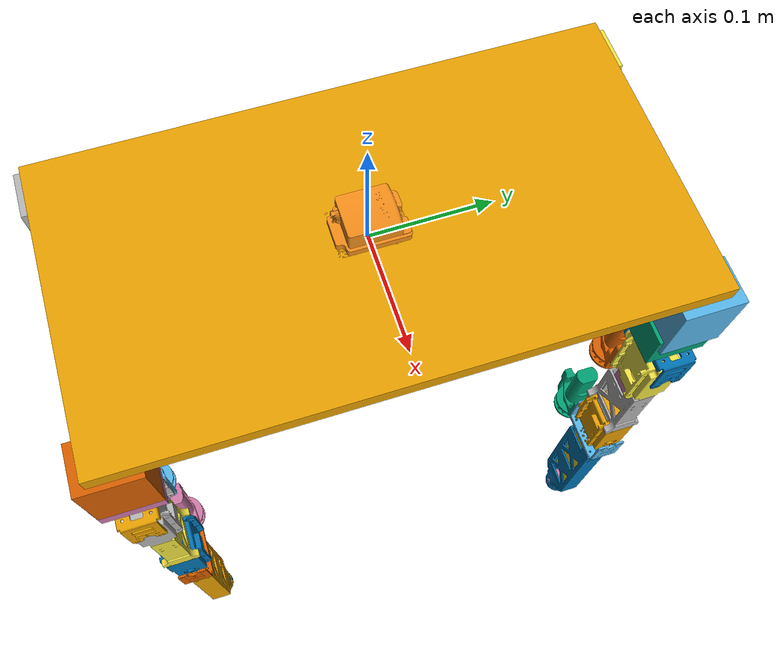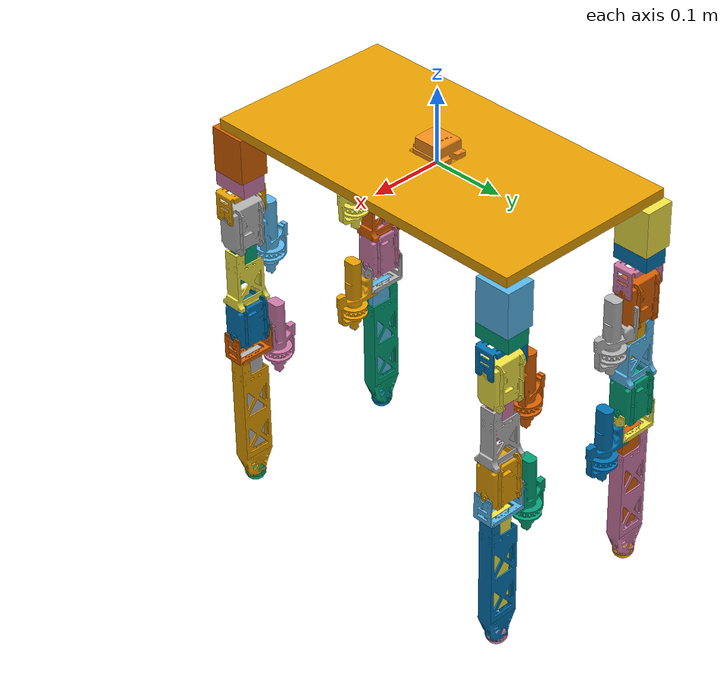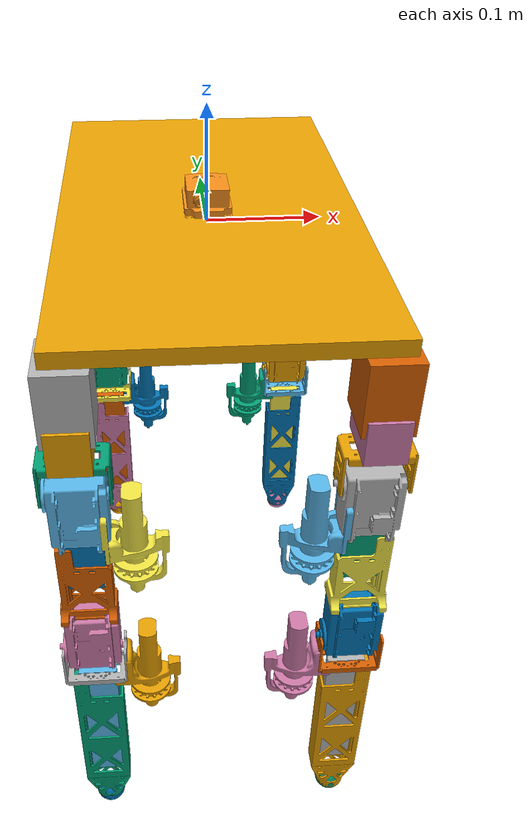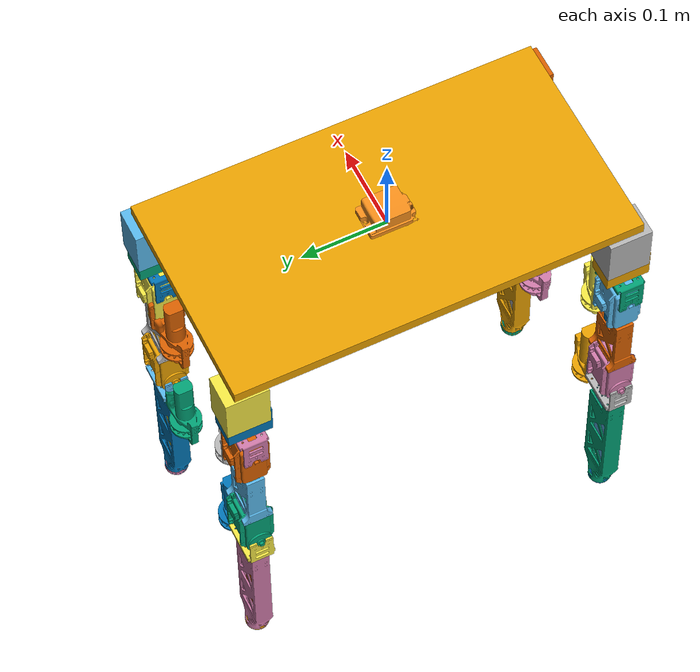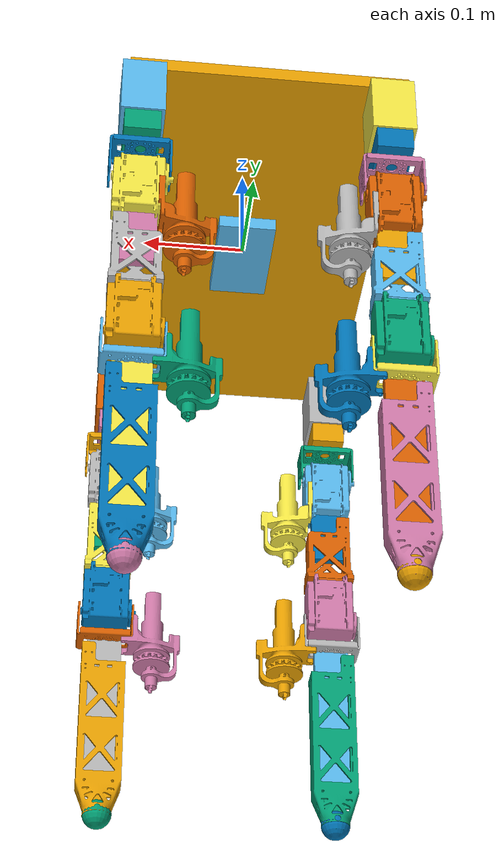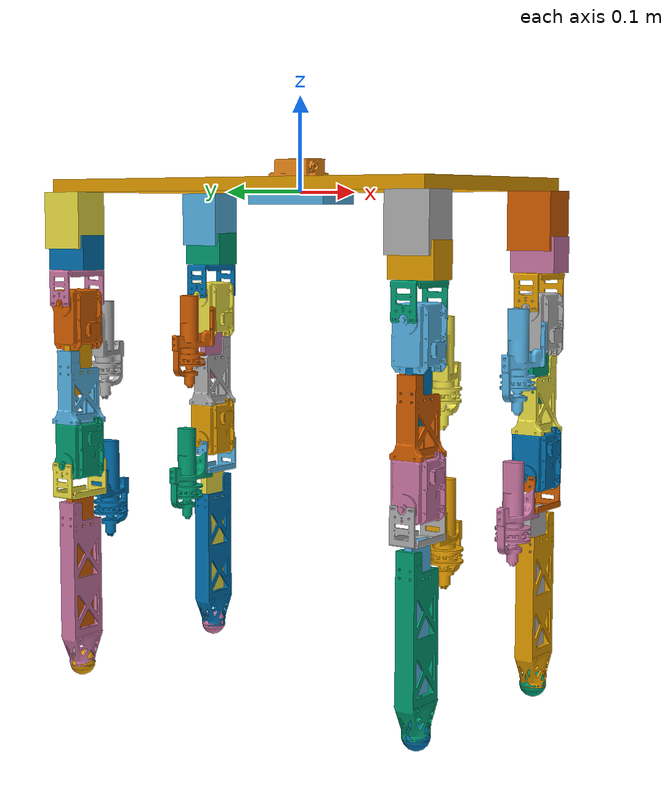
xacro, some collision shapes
<?xml version="1.0"?>
<robot name="dyret" xmlns:xacro="http://ros.org/wiki/xacro">
	<!-- Arguments that can be passed to this URDF file: -->
	<xacro:arg name="imu_enabled" default="true" />
	<xacro:arg name="contact_enabled" default="false" />

	<!-- Import actual robot and instantiate: -->
	<xacro:include filename="$(find dyret_description)/urdf/dyret.urdf.xacro" />
	<xacro:dyret_robot />

	<!-- Create Gazebo interface for Dyret -->
	<gazebo>
		<self_collide>true</self_collide>
		<plugin name="controller" filename="libdyret_gazebo_plugin.so">
			<updateRate>50</updateRate>
			<pid>20000.0 0.0 100.0</pid>
			<pid type="mx64">64.0 0.5 1.0</pid>
			<pid type="mx106">64.0 0.5 1.0</pid>
		</plugin>
	</gazebo>
</robot>

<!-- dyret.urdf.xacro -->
<robot xmlns:xacro="http://ros.org/wiki/xacro">
	<!-- Import complex parts for robot -->
	<xacro:include filename="$(find dyret_description)/urdf/body.urdf.xacro" />
	<xacro:include filename="$(find dyret_description)/urdf/leg.urdf.xacro" />

	<xacro:macro name="dyret_robot">
		<xacro:body name="main_body" />

		<xacro:leg name="fl" />
		<joint name="fl_body_fixed" type="fixed">
			<parent link="main_body_chassis" />
			<child link="fl_joint0_servo" />
			<origin xyz="${-body_width / 2 + mx64at_width/2 - 0.007}
				${body_depth / 2 - mx64at_depth / 2 + 0.0065}
				${-mx64at_height}" />
		</joint>

		<xacro:leg name="fr" rot="-1" />
		<joint name="fr_body_fixed" type="fixed">
			<parent link="main_body_chassis" />
			<child link="fr_joint0_servo" />
			<origin xyz="${body_width / 2 - mx64at_width/2 + 0.012}
				${body_depth / 2 - mx64at_depth / 2 + 0.005}
				${-mx64at_height}" />
		</joint>

		<xacro:leg name="bl" />
		<joint name="bl_body_fixed" type="fixed">
			<parent link="main_body_chassis" />
			<child link="bl_joint0_servo" />
			<origin xyz="${-body_width / 2 + mx64at_width/2 - 0.01}
				${-body_depth / 2 + mx64at_depth / 2 - 0.0035}
				${-mx64at_height}" />
		</joint>

		<xacro:leg name="br" rot="-1" />
		<joint name="br_body_fixed" type="fixed">
			<parent link="main_body_chassis" />
			<child link="br_joint0_servo" />
			<origin xyz="${body_width / 2 - mx64at_width/2 + 0.009}
				${-body_depth / 2 + mx64at_depth / 2 - 0.005}
				${-mx64at_height}" />
		</joint>
	</xacro:macro>
</robot>

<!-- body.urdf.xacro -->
<robot xmlns:xacro="http://ros.org/wiki/xacro">
	<xacro:include filename="$(find dyret_description)/urdf/imu.urdf.xacro" />
	<xacro:include filename="$(find dyret_description)/urdf/inertias.urdf.xacro" />

	<xacro:property name="body_width" value="0.259" />
	<xacro:property name="body_depth" value="0.475" />
	<xacro:property name="body_height" value="0.0135" />

	<!-- Do not use these macros, see exported below -->
	<xacro:macro name="chassis" params="name">
		<link name="${name}">
			<visual>
				<origin rpy="${pi/2} 0 0"
					xyz="0.001 0 ${body_height}" />
				<geometry>
					<mesh filename="package://dyret_description/meshes/BODY_SERVO.STL"
						scale="0.001 0.001 0.001"/>
				</geometry>
			</visual>
			<collision>
				<origin xyz="0 0 ${body_height/2}" />
				<geometry>
					<box size="${body_width} ${body_depth} ${body_height}" />
				</geometry>
			</collision>
			<xacro:box_inertia mass="0.517" width="${body_width}"
				length="${body_depth}" height="${body_height}"
				r="${pi/2}" />
		</link>
	</xacro:macro>

	<xacro:property name="ac_width" value="0.056" />
	<xacro:property name="ac_depth" value="0.098" />
	<xacro:property name="ac_height" value="0.015" />

	<xacro:macro name="actuator_board" params="name">
		<link name="${name}">
			<visual>
				<origin xyz="0 0 ${ac_height / 2}" />
				<geometry>
					<box size="${ac_width} ${ac_depth} ${ac_height}" />
				</geometry>
			</visual>
			<collision>
				<origin xyz="0 0 ${ac_height/2}" />
				<geometry>
					<box size="${ac_width} ${ac_depth} ${ac_height}" />
				</geometry>
			</collision>
			<xacro:box_inertia mass="0.111" width="${ac_width}"
				length="${ac_depth}" height="${ac_height}"
				r="${pi/2}" />
		</link>
	</xacro:macro>

	<!-- Exported macros: -->
	<xacro:macro name="body" params="name">
		<xacro:chassis name="${name}_chassis" />
		<xacro:actuator_board name="${name}_board" />
		<xacro:imu />

		<joint name="${name}_chassis_ac_joint" type="fixed">
			<parent link="${name}_chassis" />
			<child link="${name}_board" />
			<origin xyz="0 0 ${-body_height}" />
		</joint>
		<joint name="${name}_chassis_imu_joint" type="fixed">
			<parent link="${name}_chassis" />
			<child link="imu_link" />
			<origin xyz="0 0 ${body_height}" />
		</joint>
	</xacro:macro>
</robot>

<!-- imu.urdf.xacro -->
<robot xmlns:xacro="http://ros.org/wiki/xacro">
	<xacro:include filename="$(find dyret_description)/urdf/inertias.urdf.xacro" />
	<!-- Macro for IMU -->
	<xacro:macro name="imu">
		<link name="imu_link">
			<visual>
				<origin xyz="0 0.003 0" rpy="0 0 3.1415" />
				<geometry>
					<mesh filename="package://dyret_description/meshes/xsens.STL"
						scale="0.001 0.001 0.001" />
				</geometry>
			</visual>
			<collision>
				<origin xyz="0 0 0.01" rpy="0 0 1.57" />
				<geometry>
					<box size="0.057 0.042 0.0235" />
				</geometry>
			</collision>
			<xacro:box_inertia mass="0.052" width="0.057"
				length="0.042" height="0.0235" r="${pi/2}"
				y="${pi/2}"/>
		</link>
		<!-- IMU Gazebo plugin support: -->
		<xacro:if value="$(arg imu_enabled)">
			<gazebo reference="imu_link">
				<material>Gazebo/Orange</material>
				<gravity>true</gravity>
				<sensor name="imu_sensor" type="imu">
					<always_on>true</always_on>
					<update_rate>100</update_rate>
					<visualize>true</visualize>
					<topic>imu</topic>
					<plugin filename="libgazebo_ros_imu_sensor.so" name="imu_plugin">
						<bodyName>imu_link</bodyName>
						<frameName>imu</frameName>
						<!-- Real noise is 0.01745 -->
						<gaussianNoise>0.01745</gaussianNoise>
						<robotNamespace>/dyret</robotNamespace>
						<rpyOffset>0 0 0</rpyOffset>
						<topicName>sensor/imu</topicName>
						<updateRateHZ>100.0</updateRateHZ>
						<xyzOffset>0 0 0</xyzOffset>
					</plugin>
					<pose>0 0 0 0 0 0</pose>
				</sensor>
			</gazebo>
		</xacro:if>
	</xacro:macro>
</robot>

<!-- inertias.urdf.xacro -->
<!-- This file contains handy macros for calculating inertias of different
     objects. Taken from: https://en.wikipedia.org/wiki/List_of_moments_of_inertia -->
<robot xmlns:xacro="http://ros.org/wiki/xacro">
	<xacro:macro name="box_inertia" params="mass width length height r:=0 p:=0 y:=0">
		<inertial>
			<origin xyz="0 0 ${height/2}" rpy="${r} ${p} ${y}" />
			<mass value="${mass}" />
			<inertia
				ixx="${1.0/12.0 * mass * (height ** 2 + length ** 2)}" ixy="0" ixz="0"
				iyy="${1.0/12.0 * mass * (width ** 2 + length ** 2)}" iyz="0"
				izz="${1.0/12.0 * mass * (width ** 2 + height ** 2)}" />
		</inertial>
	</xacro:macro>
	<xacro:macro name="box_inertia_inv" params="mass width length height r:=0 p:=0 y:=0">
		<inertial>
			<origin xyz="0 0 ${-height/2}" rpy="${r} ${p} ${y}" />
			<mass value="${mass}" />
			<inertia
				ixx="${1.0/12.0 * mass * (height ** 2 + length ** 2)}" ixy="0" ixz="0"
				iyy="${1.0/12.0 * mass * (width ** 2 + length ** 2)}" iyz="0"
				izz="${1.0/12.0 * mass * (width ** 2 + height ** 2)}" />
		</inertial>
	</xacro:macro>
	<xacro:macro name="cylinder_inertia" params="mass radius height">
		<inertial>
			<origin xyz="0 0 ${height/2}" />
			<mass value="${mass}" />
			<inertia
				ixx="${1.0/12.0 * mass * (3.0 * radius ** 2 + height ** 2)}" ixy="0" ixz="0"
				iyy="${1.0/12.0 * mass * (3.0 * radius ** 2 + height ** 2)}" iyz="0"
				izz="${1.0/2.0 * mass * (radius ** 2)}" />
		</inertial>
	</xacro:macro>
</robot>

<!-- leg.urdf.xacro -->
<robot xmlns:xacro="http://ros.org/wiki/xacro">
	<xacro:include filename="$(find dyret_description)/urdf/ext_motor.urdf.xacro" />
	<xacro:include filename="$(find dyret_description)/urdf/joints/foot.urdf.xacro" />
	<xacro:include filename="$(find dyret_description)/urdf/joints/large_extend.urdf.xacro" />
	<xacro:include filename="$(find dyret_description)/urdf/joints/mx106.urdf.xacro" />
	<xacro:include filename="$(find dyret_description)/urdf/joints/mx64at.urdf.xacro" />
	<xacro:include filename="$(find dyret_description)/urdf/joints/small_extend.urdf.xacro" />

	<!-- Macro for one leg of Dyret -->
	<xacro:macro name="leg" params="name rot:=1">
		<xacro:mx64at_fr05h101 name="${name}_joint0"/>
		<xacro:mx106t_fr08h101 name="${name}_joint1"/>
		<joint name="${name}_joint0_1_fixed" type="fixed">
			<parent link="${name}_joint0_bracket" />
			<child link="${name}_joint1_bracket" />
			<origin xyz="0 0 ${-mx64at_height/2 - fr05h101_height - 0.001}"
				rpy="0 0 ${pi/2}" />
		</joint>

		<xacro:ext_motor_upper name="${name}_ext_upper" rot="${rot}" />
		<joint name="${name}_joint1_motor" type="fixed">
			<parent link="${name}_joint1_servo" />
			<child link="${name}_ext_upper" />
			<origin xyz="${(-mx106t_width + 0.004) * rot} 0 ${-mx106t_height - 0.0395}" />
		</joint>

		<xacro:small_extender name="${name}_ext0" rot="${rot}" />
		<joint name="${name}_joint1_ext0_fixed" type="fixed">
			<parent link="${name}_joint1_servo" />
			<child link="${name}_ext0_inner" />
			<origin xyz="0 0 ${-mx106t_height/2 - fr08h101_height - small_ext_height/2}" />
		</joint>

		<xacro:mx106t_fr08h101_inv name="${name}_joint2" />
		<joint name="${name}_ext0_joint2_fixed" type="fixed">
			<parent link="${name}_ext0_outer" />
			<child link="${name}_joint2_servo" />
			<origin xyz="0 0.002 ${-small_ext_height/2 - small_ext2_height - mx106t_height/2}"
				rpy="0 0 ${-pi/2}" />
		</joint>

		<xacro:ext_motor_lower name="${name}_ext_lower" rot="${rot}" />
		<joint name="${name}_joint2_motor" type="fixed">
			<parent link="${name}_joint2_bracket" />
			<child link="${name}_ext_lower" />
			<origin xyz="${(-fr08h101_width + 0.008) * rot} ${0.001 * rot} ${-fr08h101_height * 2 - 0.003}" />
		</joint>

		<xacro:large_extender name="${name}_ext1" rot="${rot}" />
		<joint name="${name}_joint2_ext1_fixed" type="fixed">
			<parent link="${name}_joint2_bracket" />
			<child link="${name}_ext1_inner" />
			<origin xyz="0 0 ${-fr08h101_height - large_ext_height + 0.0145/2}" />
		</joint>

		<xacro:foot name="${name}" />
		<joint name="${name}_ext1_foot_fixed" type="fixed">
			<parent link="${name}_ext1_outer" />
			<child link="${name}_foot_cyl" />
			<origin xyz="0 0 ${-large_ext2_height - 0.0355/2}" />
		</joint>
	</xacro:macro>
</robot>

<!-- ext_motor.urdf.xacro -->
<robot xmlns:xacro="http://ros.org/wiki/xacro">
	<xacro:include filename="$(find dyret_description)/urdf/inertias.urdf.xacro" />

	<xacro:property name="ext_motor_width" value="0.05" />
	<xacro:property name="ext_motor_depth" value="0.04" />
	<xacro:property name="ext_motor_height" value="0.105" />
	<!-- Weight without chain: 172g, with chain 185g -->
	<xacro:property name="ext_motor_weight" value="0.185" />

	<!-- `rot` should be either 1 or -1 signifying no rotation or 180 degree rotation -->
	<xacro:macro name="ext_motor_upper" params="name rot:=1">
		<link name="${name}">
			<visual>
				<origin rpy="0 0 ${pi/2 * rot}"
					xyz="${(ext_motor_width/2 + 0.006) * rot}
					${(-ext_motor_depth/2 + 0.0035) * rot} 0.02" />
				<geometry>
					<mesh filename="package://dyret_description/meshes/EXT_MOTOR_UPPER.STL"
						scale="0.001 0.001 0.001"/>
				</geometry>
			</visual>

			<collision>
				<origin xyz="0 0 ${ext_motor_height/2}" rpy="0 0 ${pi/2 - (pi/2 * rot)}"/>
				<geometry>
					<box size="${ext_motor_width} ${ext_motor_depth} ${ext_motor_height}" />
				</geometry>
			</collision>

			<xacro:box_inertia mass="${ext_motor_weight}" width="${ext_motor_width}"
				length="${ext_motor_depth}" height="${ext_motor_height}"
				r="${pi/2}" y="${pi/2 - (pi/2 * rot)}" />
		</link>
	</xacro:macro>

	<xacro:macro name="ext_motor_lower" params="name rot:=1">
		<link name="${name}">
			<visual>
				<origin rpy="0 0 ${pi/2 * rot}"
					xyz="${(ext_motor_width/2 + 0.006) * rot}
					${(-ext_motor_depth/2 + 0.013) * rot} 0.013" />
				<geometry>
					<mesh filename="package://dyret_description/meshes/EXT_MOTOR_LOWER.STL"
						scale="0.001 0.001 0.001"/>
				</geometry>
			</visual>

			<collision>
				<origin xyz="0 0 ${ext_motor_height/2}" rpy="0 0 ${pi/2 - (pi/2 * rot)}"/>
				<geometry>
					<box size="${ext_motor_width} ${ext_motor_depth} ${ext_motor_height}" />
				</geometry>
			</collision>

			<xacro:box_inertia mass="${ext_motor_weight}" width="${ext_motor_width}"
				length="${ext_motor_depth}" height="${ext_motor_height}"
				r="${pi/2}" y="${pi/2 - (pi/2 * rot)}" />
		</link>
	</xacro:macro>
</robot>

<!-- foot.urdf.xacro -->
<robot xmlns:xacro="http://ros.org/wiki/xacro">
	<xacro:include filename="$(find dyret_description)/urdf/inertias.urdf.xacro" />

	<xacro:macro name="foot" params="name">
		<link name="${name}_foot_cyl">
			<collision>
				<geometry>
					<cylinder radius="0.014" length="0.0355" />
				</geometry>
			</collision>

			<xacro:cylinder_inertia mass="0.007" height="0.0355"
				radius="0.014"/>
		</link>
		<link name="${name}_foot_sph">
			<visual>
				<geometry>
					<sphere radius="0.0142" />
				</geometry>
			</visual>

			<collision>
				<geometry>
					<sphere radius="0.0142" />
				</geometry>
			</collision>

			<xacro:box_inertia mass="0.018" height="0.0142"
				width="0.0142" length="0.0142" />
		</link>
		<joint name="${name}_foot_fixed" type="fixed">
			<parent link="${name}_foot_cyl" />
			<child link="${name}_foot_sph" />
			<origin xyz="0 0 ${-0.0355/2 + 0.00195}" />
		</joint>

		<xacro:if value="$(arg contact_enabled)">
			<gazebo reference="${name}_foot_sph">
				<kp>1000000.0</kp>
				<kd>100.0</kd>
				<mu1>1.5</mu1>
				<mu2>1.5</mu2>
				<maxVel>1.0</maxVel>
				<minDepth>0.0</minDepth>
				<material>Gazebo/Black</material>
				<sensor name="${name}_bumper" type="contact">
					<contact>
						<collision>${name}_ext1_outer_fixed_joint_lump__${name}_foot_sph_collision_2</collision>
					</contact>
					<plugin name="${name}_gazebo_ros_bumper_controller"
						filename="libgazebo_ros_bumper.so">
						<robotNamespace>/dyret</robotNamespace>
						<bumperTopicName>sensor/contact/${name}</bumperTopicName>
						<frameName>world</frameName>
					</plugin>
				</sensor>
			</gazebo>
		</xacro:if>
		<xacro:unless value="$(arg contact_enabled)">
			<gazebo reference="${name}_foot_sph">
				<kp>1000000.0</kp>
				<kd>100.0</kd>
				<mu1>1.5</mu1>
				<mu2>1.5</mu2>
        <maxVel>0.001</maxVel>
  			<minDepth>0.002</minDepth>
        <fdir>1 0 0</fdir>
			</gazebo>
		</xacro:unless>
		<gazebo reference="${name}_foot_cyl">
			<kp>1000000.0</kp>
			<kd>100.0</kd>
			<mu1>1.5</mu1>
			<mu2>1.5</mu2>
			<maxVel>0.001</maxVel>
			<minDepth>0.002</minDepth>
      <fdir>1 0 0</fdir>
		</gazebo>
	</xacro:macro>
</robot>

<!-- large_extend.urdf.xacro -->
<robot xmlns:xacro="http://ros.org/wiki/xacro">
	<xacro:include filename="$(find dyret_description)/urdf/inertias.urdf.xacro" />

	<xacro:property name="large_ext_width" value="0.0343" />
	<xacro:property name="large_ext_depth" value="0.0081" />
	<xacro:property name="large_ext_height" value="0.1505" />

	<xacro:property name="large_ext2_width" value="0.0436" />
	<xacro:property name="large_ext2_depth" value="0.0212" />
	<xacro:property name="large_ext2_height" value="0.1287" />

	<xacro:macro name="large_ext" params="name">
		<link name="${name}">
			<visual>
				<origin xyz="0 0 ${large_ext_height/2}" />
				<geometry>
					<box size="${large_ext_width} ${large_ext_depth} ${large_ext_height}" />
				</geometry>
			</visual>
			<collision>
				<origin xyz="0 0 ${large_ext_height/2}" />
				<geometry>
					<box size="${large_ext_width} ${large_ext_depth} ${large_ext_height}" />
				</geometry>
			</collision>
			<xacro:box_inertia mass="0.099" width="${large_ext_width}"
				length="${large_ext_depth}" height="${large_ext_height}"
				r="${pi/2}" />
		</link>
	</xacro:macro>

	<xacro:macro name="large_ext2" params="name rot:=1">
		<link name="${name}">
			<visual>
				<origin rpy="0 0 ${pi/2 * rot}"
					xyz="${(large_ext2_width * 2 - 0.009) * rot}
					${(-large_ext2_depth * 2 - 0.002) * rot}
					${-large_ext2_height * 1.5 + 0.005}" />
				<geometry>
					<mesh filename="package://dyret_description/meshes/EXT2_OUTER.STL"
						scale="0.001 0.001 0.001"/>
				</geometry>
			</visual>
			<collision>
				<origin xyz="0 0 ${-large_ext2_height/2}" />
				<geometry>
					<box size="${large_ext2_width} ${large_ext2_depth} ${large_ext2_height}" />
				</geometry>
			</collision>
			<xacro:box_inertia_inv mass="0.037" width="${large_ext2_width}"
				length="${large_ext2_depth}" height="${large_ext2_height}"
				r="${pi/2}" />
		</link>
	</xacro:macro>

	<xacro:macro name="large_extender" params="name rot:=1">
		<xacro:large_ext name="${name}_inner" />
		<xacro:large_ext2 name="${name}_outer" rot="${rot}" />
		<joint name="${name}" type="prismatic">
			<parent link="${name}_inner" />
			<child link="${name}_outer" />
			<axis xyz="0 0 1" />
			<origin xyz="0 0 ${large_ext_height - 0.0291}" />
			<limit
				lower="-0.100" upper="0.0"
				effort="100.0" velocity="0.00045" />
			<dynamics damping="1.0" friction="70" />
		</joint>
		<gazebo reference="${name}">
			<implicitSpringDamper>1</implicitSpringDamper>
		</gazebo>
	</xacro:macro>
</robot>

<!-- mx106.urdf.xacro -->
<robot xmlns:xacro="http://ros.org/wiki/xacro">
	<xacro:include filename="$(find dyret_description)/urdf/inertias.urdf.xacro" />

	<xacro:property name="mx106t_width" value="0.0460" />
	<xacro:property name="mx106t_depth" value="0.0402" />
	<xacro:property name="mx106t_height" value="0.0651" />

	<!-- Helper macros see below for exported macros -->
	<xacro:macro name="mx106t" params="name">
		<link name="${name}">
			<visual>
				<origin rpy="${pi/2} 0 ${pi/2}"
					xyz="${-mx106t_width/2 - 0.002} ${-mx106t_depth/2} ${-mx106t_height + 0.0145}" />
				<geometry>
					<mesh filename="package://dyret_description/meshes/MX-106T.STL"
						scale="0.001 0.001 0.001" />
				</geometry>
			</visual>
			<collision>
				<origin xyz="0 0 ${-mx106t_height/2 + 0.0145}" />
				<geometry>
					<box size="${mx106t_width} ${mx106t_depth} ${mx106t_height}" />
				</geometry>
			</collision>
			<inertial>
				<mass value="0.158" />
				<origin xyz="-0.000142777 0 ${-mx106t_height/2 + 0.0145}"
					rpy="${pi/2} 0 ${pi/2}" />
				<inertia
					ixx="0.000078694" ixy="0" ixz="0"
					iyy="0.000040972" iyz="0"
					izz="0.000061357" />
			</inertial>
		</link>
	</xacro:macro>

	<xacro:property name="fr08h101_width" value="0.056" />
	<xacro:property name="fr08h101_depth" value="0.033" />
	<xacro:property name="fr08h101_height" value="0.0408" />
	<xacro:property name="fr08h101_offset" value="0.003" />

	<xacro:macro name="fr08h101" params="name">
		<link name="${name}">
			<visual>
				<origin rpy="${pi/2} 0 0"
					xyz="${-fr08h101_width/2} ${fr08h101_depth/2} ${-fr08h101_offset}" />
				<geometry>
					<mesh filename="package://dyret_description/meshes/FR08-H101.STL"
						scale="0.001 0.001 0.001"/>
				</geometry>
			</visual>

			<collision>
				<origin xyz="0 0 ${fr08h101_height/2 - fr08h101_offset}" />
				<geometry>
					<box size="${fr08h101_width} ${fr08h101_depth} ${fr08h101_height - fr08h101_offset}" />
				</geometry>
			</collision>

			<xacro:box_inertia mass="0.018" width="${fr08h101_width}"
				length="${fr08h101_depth}" height="${fr08h101_height}"	/>
		</link>
	</xacro:macro>

	<xacro:macro name="mx106t_inv" params="name">
		<link name="${name}">
			<visual>
				<origin rpy="${pi/2} ${pi} ${pi}"
					xyz="${-mx106t_width/2 + 0.0049} ${-mx106t_depth/2 - 0.0049} ${mx106t_height}" />
				<geometry>
					<mesh filename="package://dyret_description/meshes/MX-106T.STL"
						scale="0.001 0.001 0.001"/>
				</geometry>
			</visual>

			<collision>
				<origin rpy="0 ${pi} ${pi/2}"
					xyz="0 0 ${mx106t_height/2}" />
				<geometry>
					<box size="${mx106t_width} ${mx106t_depth} ${mx106t_height}" />
				</geometry>
			</collision>

			<inertial>
				<mass value="0.158" />
				<origin xyz="0 0 ${mx106t_height/2}"
					rpy="${pi/2} 0 0" />
				<inertia
					ixx="0.000078694" ixy="0" ixz="0"
					iyy="0.000040972" iyz="0"
					izz="0.000061357" />
			</inertial>
		</link>
	</xacro:macro>

	<xacro:macro name="fr08h101_inv" params="name">
		<link name="${name}">
			<visual>
				<origin rpy="${pi/2} ${pi} ${pi}"
					xyz="${-fr08h101_width/2} ${-fr08h101_depth/2} ${fr08h101_offset}" />
				<geometry>
					<mesh filename="package://dyret_description/meshes/FR08-H101.STL"
						scale="0.001 0.001 0.001"/>
				</geometry>
			</visual>

			<collision>
				<origin rpy="0 ${pi} 0" xyz="0 0 ${-fr08h101_height/2 + fr08h101_offset}" />
				<geometry>
					<box size="${fr08h101_width} ${fr08h101_depth} ${fr08h101_height - fr08h101_offset}" />
				</geometry>
			</collision>

			<xacro:box_inertia_inv mass="0.018" width="${fr08h101_width}"
				length="${fr08h101_depth}" height="${fr08h101_height}"	/>
		</link>
	</xacro:macro>

	<!-- Use the following macros when building models: -->
	<xacro:macro name="mx106t_fr08h101" params="name">
		<xacro:mx106t name="${name}_servo" />
		<xacro:fr08h101 name="${name}_bracket" />
		<joint name="${name}" type="revolute">
			<parent link="${name}_bracket" />
			<child link="${name}_servo" />
			<limit
				lower="-1.57" upper="1.57"
				effort="10.0" velocity="5.76" />
			<dynamics friction="0.1" damping="0.0952" />
		</joint>
		<gazebo reference="${name}">
			<implicitSpringDamper>1</implicitSpringDamper>
			<stopKd value="100000000.0" />
			<stopKp value="100000000.0" />
			<fudgeFactor value="0.5" />
		</gazebo>
	</xacro:macro>

	<xacro:macro name="mx106t_fr08h101_inv" params="name">
		<xacro:mx106t_inv name="${name}_servo" />
		<xacro:fr08h101_inv name="${name}_bracket" />
		<joint name="${name}" type="revolute">
			<parent link="${name}_servo" />
			<child link="${name}_bracket" />
			<origin xyz="0.002 0 0.0145" rpy="0 0 ${pi/2}" />
			<limit
				lower="-1.57" upper="1.57"
				effort="10.0" velocity="5.76" />
			<dynamics friction="0.1" damping="0.0952" />
		</joint>
		<gazebo reference="${name}">
			<implicitSpringDamper>1</implicitSpringDamper>
			<stopKd value="100000000.0" />
			<stopKp value="100000000.0" />
			<fudgeFactor value="0.5" />
		</gazebo>
	</xacro:macro>
</robot>

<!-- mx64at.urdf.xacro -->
<robot xmlns:xacro="http://ros.org/wiki/xacro">
	<xacro:include filename="$(find dyret_description)/urdf/inertias.urdf.xacro" />

	<xacro:property name="mx64at_width" value="0.05" />
	<xacro:property name="mx64at_depth" value="0.0402" />
	<xacro:property name="mx64at_height" value="0.0611" />

	<xacro:property name="fr05h101_width" value="0.051" />
	<xacro:property name="fr05h101_depth" value="0.033" />
	<xacro:property name="fr05h101_height" value="0.0405" />
	<xacro:property name="fr05h101_offset" value="0.003" />

	<xacro:macro name="mx64at" params="name">
		<link name="${name}">
			<visual>
				<origin rpy="${pi/2} ${pi} ${pi}"
					xyz="${-mx64at_width/2 + 0.0049} ${-mx64at_depth/2 - 0.0049} ${mx64at_height}" />
				<geometry>
					<mesh filename="package://dyret_description/meshes/MX-64AT_AR.STL"
						scale="0.001 0.001 0.001"/>
				</geometry>
			</visual>

			<collision>
				<origin rpy="0 ${pi} ${pi/2}"
					xyz="0 0 ${mx64at_height/2}" />
				<geometry>
					<box size="${mx64at_width} ${mx64at_depth} ${mx64at_height}" />
				</geometry>
			</collision>

			<inertial>
				<!-- Based on: references/RX-64_INERTIA.pdf -->
				<mass value="0.1295" />
				<origin rpy="${pi/2} 0 0"
					xyz="0 -0.004 ${mx64at_height/2}" />
				<inertia
					ixx="0.00005645784" ixy="0" ixz="0"
					iyy="0.000029325728" iyz="0"
					izz="0.000045111809" />
			</inertial>
		</link>
	</xacro:macro>

	<xacro:macro name="fr05h101" params="name">
		<link name="${name}">
			<visual>
				<origin rpy="${pi/2} ${pi} ${pi}"
					xyz="${-fr05h101_width/2} ${-fr05h101_depth/2} ${fr05h101_offset}" />
				<geometry>
					<mesh filename="package://dyret_description/meshes/FR05-H101.STL"
						scale="0.001 0.001 0.001"/>
				</geometry>
			</visual>

			<collision>
				<origin rpy="0 ${pi} 0" xyz="0 0 ${-fr05h101_height/2 + fr05h101_offset}" />
				<geometry>
					<box size="${fr05h101_width} ${fr05h101_depth} ${fr05h101_height - fr05h101_offset}" />
				</geometry>
			</collision>

			<xacro:box_inertia_inv mass="0.016" width="${fr05h101_width}"
				length="${fr05h101_depth}" height="${fr05h101_height}"
				r="${pi/2}" />
		</link>
	</xacro:macro>

	<!-- Use the following macros when building models: -->
	<xacro:macro name="mx64at_fr05h101" params="name">
		<xacro:mx64at name="${name}_servo" />
		<xacro:fr05h101 name="${name}_bracket" />
		<joint name="${name}" type="revolute">
			<parent link="${name}_servo" />
			<child link="${name}_bracket" />
			<origin xyz="0 -0.0025 0.013" rpy="0 0 ${pi/2}" />
			<limit
				lower="-1.57" upper="1.57"
				effort="6.0" velocity="6.597" />
			<dynamics friction="0.1" damping="0.0952" />
		</joint>
		<gazebo reference="${name}">
			<implicitSpringDamper>1</implicitSpringDamper>
			<stopKd value="100000000.0" />
			<stopKp value="100000000.0" />
			<fudgeFactor value="0.5" />
		</gazebo>
	</xacro:macro>
</robot>

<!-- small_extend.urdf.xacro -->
<robot xmlns:xacro="http://ros.org/wiki/xacro">
	<xacro:include filename="$(find dyret_description)/urdf/inertias.urdf.xacro" />

	<xacro:property name="small_ext_width" value="0.0343" />
	<xacro:property name="small_ext_depth" value="0.0081" />
	<xacro:property name="small_ext_height" value="0.0555" />

	<xacro:property name="small_ext2_width" value="0.0436" />
	<xacro:property name="small_ext2_depth" value="0.0212" />
	<xacro:property name="small_ext2_height" value="0.06" />

	<xacro:macro name="small_ext" params="name">
		<link name="${name}">
			<visual>
				<origin xyz="0 0 ${small_ext_height/2}" />
				<geometry>
					<box size="${small_ext_width} ${small_ext_depth} ${small_ext_height}" />
				</geometry>
			</visual>
			<collision>
				<origin xyz="0 0 ${small_ext_height/2}" />
				<geometry>
					<box size="${small_ext_width} ${small_ext_depth} ${small_ext_height}" />
				</geometry>
			</collision>
			<xacro:box_inertia mass="0.078" width="${small_ext_width}"
				length="${small_ext_depth}" height="${small_ext_height}"
				r="${pi/2}" />
		</link>
	</xacro:macro>

	<xacro:macro name="small_ext2" params="name rot:=1">
		<link name="${name}">
			<visual>
				<origin rpy="0 0 ${pi/2 * rot}"
					xyz="${small_ext2_width/2 * rot} ${-small_ext2_depth/2 * rot} ${-small_ext2_height + 0.005}" />
				<geometry>
					<mesh filename="package://dyret_description/meshes/EXT_OUTER.STL"
						scale="0.001 0.001 0.001"/>
				</geometry>
			</visual>
			<collision>
				<origin xyz="0 0 ${-small_ext2_height/2}" />
				<geometry>
					<box size="${small_ext2_width} ${small_ext2_depth} ${small_ext2_height}" />
				</geometry>
			</collision>
			<xacro:box_inertia_inv mass="0.02" width="${small_ext2_width}"
				length="${small_ext2_depth}" height="${small_ext2_height}"
				r="${pi/2}" />
		</link>
	</xacro:macro>

	<xacro:macro name="small_extender" params="name rot:=1">
		<xacro:small_ext name="${name}_inner" />
		<xacro:small_ext2 name="${name}_outer" rot="${rot}" />
		<joint name="${name}" type="prismatic">
			<parent link="${name}_inner" />
			<child link="${name}_outer" />
			<axis xyz="0 0 1" />
			<origin xyz="0 0 ${small_ext_height - 0.026}" />
			<limit
				lower="-0.025" upper="0.0"
				effort="100.0" velocity="0.00045" />
			<dynamics damping="1.0" friction="80" />
		</joint>
		<gazebo reference="${name}">
			<implicitSpringDamper>1</implicitSpringDamper>
		</gazebo>
	</xacro:macro>
</robot>
